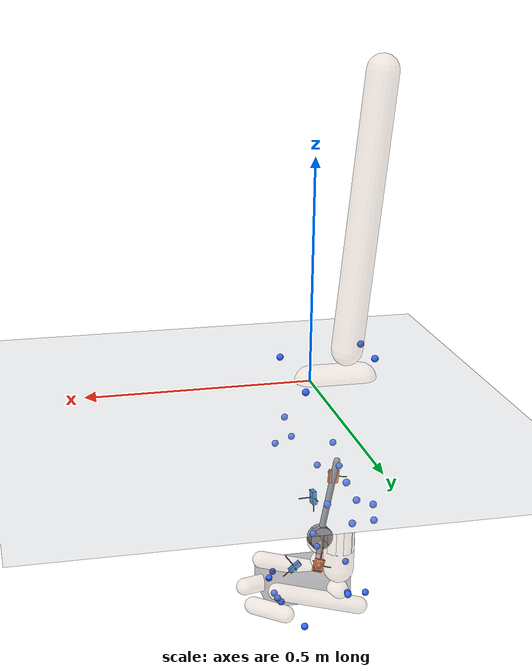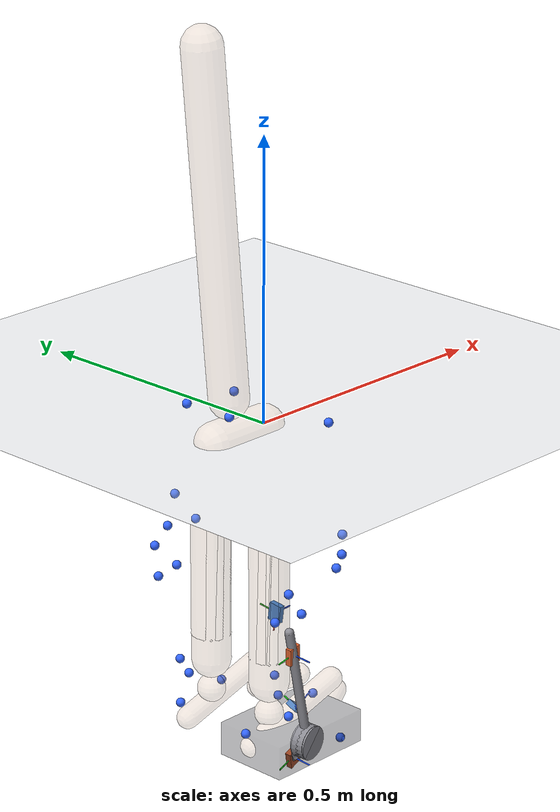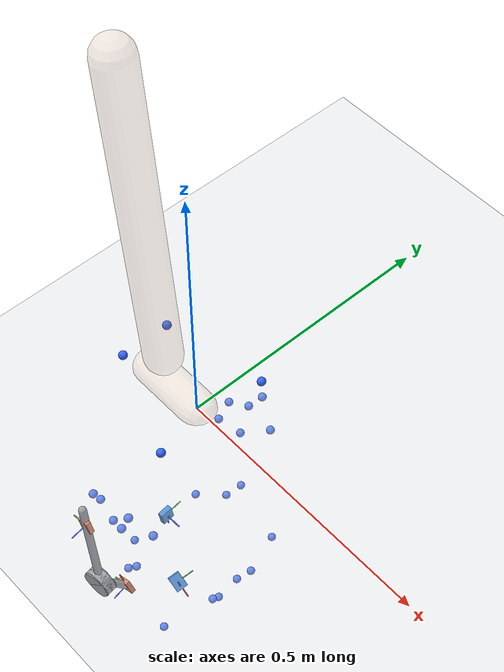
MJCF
<mujoco model="AB17">
  <compiler angle="radian" autolimits="true"/>
  <option timestep="0.005" gravity="0 0 -9.81"><flag contact="disable"/></option>
  <visual><global offwidth="1600" offheight="1200"/>
    <headlight ambient="0.55 0.55 0.55" diffuse="0.6 0.6 0.6"/></visual>
  <default><joint limited="false" damping="0"/><geom contype="0" conaffinity="0"/></default>
  <asset>
    <texture name="grid" type="2d" builtin="checker" rgb1="0.75 0.77 0.8" rgb2="0.85 0.87 0.9" width="512" height="512"/>
    <material name="grid" texture="grid" texrepeat="2 2" texuniform="true"/>
    <material name="skin" rgba="0.85 0.72 0.62 0.28"/>
  </asset>
  <worldbody>
    <light pos="0 0 4" dir="0 0 -1"/>
    <geom name="floor" type="plane" size="0 0 0.05" material="grid"/>
    <body name="pelvis" pos="0 0 0" quat="1 0 0 0">
      <joint name="pelvis_tx" type="slide" axis="1 0 0"/>
      <joint name="pelvis_ty" type="slide" axis="0 0 1"/>
      <joint name="pelvis_tz" type="slide" axis="0 -1 0"/>
      <joint name="pelvis_tilt" type="hinge" axis="0 -1 0"/>
      <joint name="pelvis_list" type="hinge" axis="1 0 0"/>
      <joint name="pelvis_rotation" type="hinge" axis="0 0 1"/>
      <inertial pos="-0.058198868 0 0" mass="9.66482" diaginertia="0.096648211 0.096648211 0.096648211"/>
      <geom type="capsule" fromto="0 0 0 -0.11639774 0 0" size="0.035" material="skin" mass="0"/>
      <site name="m_R_ASIS" pos="0.040092011 -0.11033303 0.020658145" size="0.008" rgba="0.2 0.4 1 1" group="2"/>
      <site name="m_L_ASIS" pos="0.040630144 0.10916832 0.017670494" size="0.008" rgba="0.2 0.4 1 1" group="2"/>
      <site name="m_L_PSIS" pos="-0.13215133 0.048343885 0.059671703" size="0.008" rgba="0.2 0.4 1 1" group="2"/>
      <site name="m_R_PSIS" pos="-0.13090733 -0.048031484 0.061258153" size="0.008" rgba="0.2 0.4 1 1" group="2"/>
      <body name="femur_r" pos="-0.058198868 -0.068735579 -0.054412237" quat="1 0 0 0">
        <joint name="hip_flexion_r" type="hinge" axis="0 -1 0"/>
        <joint name="hip_adduction_r" type="hinge" axis="1 0 0"/>
        <joint name="hip_rotation_r" type="hinge" axis="0 0 1"/>
        <inertial pos="0 0 -0.16627577" mass="7.63321" diaginertia="0.076332145 0.076332145 0.076332145"/>
        <geom type="capsule" fromto="0 0 0 0 0 -0.33255154" size="0.035" material="skin" mass="0"/>
        <site name="m_R_Thigh_Upper" pos="0.068810413 -0.10181036 -0.099256841" size="0.008" rgba="0.2 0.4 1 1" group="2"/>
        <site name="m_R_Thigh_Front" pos="0.09798402 -0.074504945 -0.15286232" size="0.008" rgba="0.2 0.4 1 1" group="2"/>
        <site name="m_R_Thigh_Rear" pos="0.049728949 -0.10645441 -0.15266273" size="0.008" rgba="0.2 0.4 1 1" group="2"/>
        <site name="m_R_Knee_Lat" pos="-0.00097667618 -0.072581233 -0.40083659" size="0.008" rgba="0.2 0.4 1 1" group="2"/>
        <body name="tibia_r" pos="0 0 0" quat="1 0 0 0">
<geom name="gt_shank_axis_x" type="capsule" size="0.0012" fromto="0.02530 0.00790 -0.26140 0.02471 0.01263 -0.29607" rgba="1 0.1 0.1 1" contype="0" conaffinity="0" mass="0"/>
<geom name="gt_shank_axis_y" type="capsule" size="0.0012" fromto="0.02530 0.00790 -0.26140 0.02378 0.04254 -0.25665" rgba="0.1 0.8 0.1 1" contype="0" conaffinity="0" mass="0"/>
<geom name="gt_shank_axis_z" type="capsule" size="0.0012" fromto="0.02530 0.00790 -0.26140 0.06026 0.00949 -0.26178" rgba="0.1 0.3 1 1" contype="0" conaffinity="0" mass="0"/>
<geom name="exo_shank_axis_x" type="capsule" size="0.0012" fromto="-0.06062 -0.11255 -0.27105 -0.06530 -0.11632 -0.23656" rgba="1 0.1 0.1 1" contype="0" conaffinity="0" mass="0"/>
<geom name="exo_shank_axis_y" type="capsule" size="0.0012" fromto="-0.06062 -0.11255 -0.27105 -0.09519 -0.11489 -0.27599" rgba="0.1 0.8 0.1 1" contype="0" conaffinity="0" mass="0"/>
<geom name="exo_shank_axis_z" type="capsule" size="0.0012" fromto="-0.06062 -0.11255 -0.27105 -0.05778 -0.14727 -0.27446" rgba="0.1 0.3 1 1" contype="0" conaffinity="0" mass="0"/>
<geom name="encoder_shank" type="cylinder" size="0.03 0.012" fromto="-0.03176 -0.13124 -0.43742 -0.03404 -0.10736 -0.43718" rgba="0.55 0.55 0.58 1" contype="0" conaffinity="0" mass="0"/>
<geom name="strut_shank" type="capsule" size="0.008" fromto="-0.03290 -0.11930 -0.43730 -0.06755 -0.11086 -0.22948" rgba="0.55 0.55 0.58 1" contype="0" conaffinity="0" mass="0"/>
          <joint name="knee_r_translation1" type="slide" axis="1 0 0"/>
          <joint name="knee_r_translation2" type="slide" axis="0 0 1"/>
          <joint name="knee_angle_r" type="hinge" axis="0 -1 0"/>
          <inertial pos="0 0 -0.18987277" mass="3.04257" diaginertia="0.030425681 0.030425681 0.030425681"/>
          <geom type="capsule" fromto="0 0 0 0 0 -0.37974555" size="0.035" material="skin" mass="0"/>
          <site name="m_R_Shank_Upper" pos="-0.050505497 -0.092936208 -0.17195091" size="0.008" rgba="0.2 0.4 1 1" group="2"/>
          <site name="m_R_Shank_Front" pos="-0.01001872 -0.084110031 -0.22367975" size="0.008" rgba="0.2 0.4 1 1" group="2"/>
          <site name="m_R_Shank_Rear" pos="-0.061783605 -0.072911691 -0.22562992" size="0.008" rgba="0.2 0.4 1 1" group="2"/>
          <site name="m_R_Ankle_Lat" pos="-0.0053041204 -0.050952478 -0.42551251" size="0.008" rgba="0.2 0.4 1 1" group="2"/>
          <site name="gt_shank_imu" type="box" size="0.016 0.012 0.005" pos="0.0253 0.0079 -0.2614" quat="0.70031823 0.032273696 0.71024244 0.063784458" rgba="0.16 0.47 0.84 1" group="1"/>
          <site name="exo_shank_imu" type="box" size="0.016 0.012 0.005" pos="-0.060623 -0.112549 -0.271046" quat="-0.41892902 -0.5076709 0.53943921 -0.52514195" rgba="0.92 0.41 0.20 1" group="1"/>
          <body name="talus_r" pos="0 0 -0.4373074" quat="1 0 0 0">
            <joint name="ankle_angle_r" type="hinge" axis="-0.10501355 -0.97912632 -0.17402245"/>
            <inertial pos="0 0 0" mass="0.0820652" diaginertia="0.00082065221 0.00082065221 0.00082065221"/>
            <geom type="sphere" size="0.025" material="skin" mass="0"/>
            <body name="calcn_r" pos="-0.049598796 -0.0080545922 -0.042662897" quat="1 0 0 0">
<geom name="gt_foot_axis_x" type="capsule" size="0.0012" fromto="0.11200 0.00210 0.03050 0.13957 0.00356 0.00899" rgba="1 0.1 0.1 1" contype="0" conaffinity="0" mass="0"/>
<geom name="gt_foot_axis_y" type="capsule" size="0.0012" fromto="0.11200 0.00210 0.03050 0.11720 0.03554 0.03943" rgba="0.1 0.8 0.1 1" contype="0" conaffinity="0" mass="0"/>
<geom name="gt_foot_axis_z" type="capsule" size="0.0012" fromto="0.11200 0.00210 0.03050 0.13292 -0.00813 0.05662" rgba="0.1 0.3 1 1" contype="0" conaffinity="0" mass="0"/>
<geom name="exo_foot_axis_x" type="capsule" size="0.0012" fromto="0.03279 -0.06378 -0.00980 0.02197 -0.06985 0.02293" rgba="1 0.1 0.1 1" contype="0" conaffinity="0" mass="0"/>
<geom name="exo_foot_axis_y" type="capsule" size="0.0012" fromto="0.03279 -0.06378 -0.00980 -0.00022 -0.06629 -0.02117" rgba="0.1 0.8 0.1 1" contype="0" conaffinity="0" mass="0"/>
<geom name="exo_foot_axis_z" type="capsule" size="0.0012" fromto="0.03279 -0.06378 -0.00980 0.03710 -0.09816 -0.01474" rgba="0.1 0.3 1 1" contype="0" conaffinity="0" mass="0"/>
<geom name="encoder_foot" type="cylinder" size="0.03 0.012" fromto="0.01883 -0.12297 0.04167 0.01457 -0.09943 0.04373" rgba="0.55 0.55 0.58 1" contype="0" conaffinity="0" mass="0"/>
<geom name="strut_foot" type="capsule" size="0.008" fromto="0.01670 -0.11120 0.04270 0.03279 -0.06378 -0.00980" rgba="0.55 0.55 0.58 1" contype="0" conaffinity="0" mass="0"/>
<geom name="shoe" type="box" pos="0.09169 -0.00413 -0.00522" size="0.10089 0.06874 0.03000" rgba="0.15 0.15 0.18 0.35" contype="0" conaffinity="0" mass="0"/>
              <joint name="subtalar_angle_r" type="hinge" axis="0.78717961 0.12094949 0.60474746"/>
              <inertial pos="0.097674921 0 0.029302476" mass="1.02582" diaginertia="0.010258153 0.010258153 0.010258153"/>
              <geom type="capsule" fromto="0 0 0 0.19534984 0 0.058604952" size="0.02" material="skin" mass="0"/>
              <site name="m_R_Heel" pos="-0.016202452 -0.00092604503 0.028939134" size="0.008" rgba="0.2 0.4 1 1" group="2"/>
              <site name="m_R_Toe_Lat" pos="0.14889091 -0.066080716 -0.015218928" size="0.008" rgba="0.2 0.4 1 1" group="2"/>
              <site name="m_R_Toe_Med" pos="0.17480782 0.051400973 -0.0056013466" size="0.008" rgba="0.2 0.4 1 1" group="2"/>
              <site name="m_R_Toe_Tip" pos="0.18257995 0.030240769 0.023770574" size="0.008" rgba="0.2 0.4 1 1" group="2"/>
              <site name="gt_foot_imu" type="box" size="0.016 0.012 0.005" pos="0.112 0.0021 0.0305" quat="0.93402099 0.14652243 0.32452357 -0.028642775" rgba="0.16 0.47 0.84 1" group="1"/>
              <site name="exo_foot_imu" type="box" size="0.016 0.012 0.005" pos="0.032789 -0.063783 -0.009796" quat="-0.34574846 -0.47534288 0.58710384 -0.55661137" rgba="0.92 0.41 0.20 1" group="1"/>
              <body name="toes_r" pos="0.17464276 -0.0010548891 -0.0019534984" quat="1 0 0 0">
                <joint name="mtp_angle_r" type="hinge" axis="-0.5809544 -0.81393611 0"/>
                <inertial pos="0.033795523 0.017093111 0.0058604952" mass="0.177753" diaginertia="0.0017775327 0.0017775327 0.0017775327"/>
                <geom type="capsule" fromto="0 0 0 0.067591045 0.034186222 0.01172099" size="0.02" material="skin" mass="0"/>
              </body>
            </body>
          </body>
        </body>
      </body>
      <body name="femur_l" pos="-0.058198868 0.068735579 -0.054412237" quat="1 0 0 0">
        <joint name="hip_flexion_l" type="hinge" axis="0 -1 0"/>
        <joint name="hip_adduction_l" type="hinge" axis="-1 0 0"/>
        <joint name="hip_rotation_l" type="hinge" axis="0 0 -1"/>
        <inertial pos="0 0 -0.16627577" mass="7.63321" diaginertia="0.076332145 0.076332145 0.076332145"/>
        <geom type="capsule" fromto="0 0 0 0 0 -0.33255154" size="0.035" material="skin" mass="0"/>
        <site name="m_L_Thigh_Upper" pos="0.023831074 0.11018341 -0.11393719" size="0.008" rgba="0.2 0.4 1 1" group="2"/>
        <site name="m_L_Thigh_Front" pos="0.060893582 0.097284211 -0.16810731" size="0.008" rgba="0.2 0.4 1 1" group="2"/>
        <site name="m_L_Thigh_Rear" pos="-0.0034317943 0.10096555 -0.16255608" size="0.008" rgba="0.2 0.4 1 1" group="2"/>
        <site name="m_L_Knee_Lat" pos="-0.00067128207 0.076052692 -0.40740994" size="0.008" rgba="0.2 0.4 1 1" group="2"/>
        <body name="tibia_l" pos="0 0 0" quat="1 0 0 0">
          <joint name="knee_l_translation1" type="slide" axis="1 0 0"/>
          <joint name="knee_l_translation2" type="slide" axis="0 0 1"/>
          <joint name="knee_angle_l" type="hinge" axis="0 -1 0"/>
          <inertial pos="0 0 -0.18987277" mass="3.04257" diaginertia="0.030425681 0.030425681 0.030425681"/>
          <geom type="capsule" fromto="0 0 0 0 0 -0.37974555" size="0.035" material="skin" mass="0"/>
          <site name="m_L_Shank_Upper" pos="-0.045953927 0.089038217 -0.18274598" size="0.008" rgba="0.2 0.4 1 1" group="2"/>
          <site name="m_L_Shank_Front" pos="-0.0033644066 0.079208845 -0.22923457" size="0.008" rgba="0.2 0.4 1 1" group="2"/>
          <site name="m_L_Shank_Rear" pos="-0.055917669 0.070735863 -0.23109438" size="0.008" rgba="0.2 0.4 1 1" group="2"/>
          <site name="m_L_Ankle_Lat" pos="-0.0097473737 0.045199797 -0.42126014" size="0.008" rgba="0.2 0.4 1 1" group="2"/>
          <body name="talus_l" pos="0 0 -0.4373074" quat="1 0 0 0">
            <joint name="ankle_angle_l" type="hinge" axis="0.10501355 -0.97912632 0.17402245"/>
            <inertial pos="0 0 0" mass="0.0820652" diaginertia="0.00082065221 0.00082065221 0.00082065221"/>
            <geom type="sphere" size="0.025" material="skin" mass="0"/>
            <body name="calcn_l" pos="-0.049598796 0.0080545922 -0.042662897" quat="1 0 0 0">
              <joint name="subtalar_angle_l" type="hinge" axis="-0.78717961 0.12094949 -0.60474746"/>
              <inertial pos="0.097674921 0 0.029302476" mass="1.02582" diaginertia="0.010258153 0.010258153 0.010258153"/>
              <geom type="capsule" fromto="0 0 0 0.19534984 0 0.058604952" size="0.02" material="skin" mass="0"/>
              <site name="m_L_Heel" pos="-0.014813853 0.0025663338 0.033125695" size="0.008" rgba="0.2 0.4 1 1" group="2"/>
              <site name="m_L_Toe_Lat" pos="0.14636303 0.063365777 -0.00054337332" size="0.008" rgba="0.2 0.4 1 1" group="2"/>
              <site name="m_L_Toe_Med" pos="0.17099912 -0.05141903 -0.00044398163" size="0.008" rgba="0.2 0.4 1 1" group="2"/>
              <site name="m_L_Toe_Tip" pos="0.18618463 -0.028029912 0.024693205" size="0.008" rgba="0.2 0.4 1 1" group="2"/>
              <body name="toes_l" pos="0.17464276 0.0010548891 -0.0019534984" quat="1 0 0 0">
                <joint name="mtp_angle_l" type="hinge" axis="0.5809544 -0.81393611 0"/>
                <inertial pos="0.033795523 -0.017093111 0.0058604952" mass="0.177753" diaginertia="0.0017775327 0.0017775327 0.0017775327"/>
                <geom type="capsule" fromto="0 0 0 0.067591045 -0.034186222 0.01172099" size="0.02" material="skin" mass="0"/>
              </body>
            </body>
          </body>
        </body>
      </body>
      <body name="torso" pos="-0.082894286 0 0.067089218" quat="1 0 0 0">
        <joint name="lumbar_extension" type="hinge" axis="0 -1 0"/>
        <joint name="lumbar_bending" type="hinge" axis="1 0 0"/>
        <joint name="lumbar_rotation" type="hinge" axis="0 0 1"/>
        <inertial pos="-0.028470657 0 0.30368701" mass="28.0963" diaginertia="0.28096341 0.28096341 0.28096341"/>
        <geom type="capsule" fromto="0 0 0 -0.056941315 0 0.60737403" size="0.035" material="skin" mass="0"/>
      </body>
    </body>
  </worldbody>
  <sensor>
<accelerometer name="gt_foot_imu_acc" site="gt_foot_imu"/>
<gyro name="gt_foot_imu_gyr" site="gt_foot_imu"/>
<accelerometer name="exo_foot_imu_acc" site="exo_foot_imu"/>
<gyro name="exo_foot_imu_gyr" site="exo_foot_imu"/>
<accelerometer name="gt_shank_imu_acc" site="gt_shank_imu"/>
<gyro name="gt_shank_imu_gyr" site="gt_shank_imu"/>
<accelerometer name="exo_shank_imu_acc" site="exo_shank_imu"/>
<gyro name="exo_shank_imu_gyr" site="exo_shank_imu"/>
</sensor>
</mujoco>
